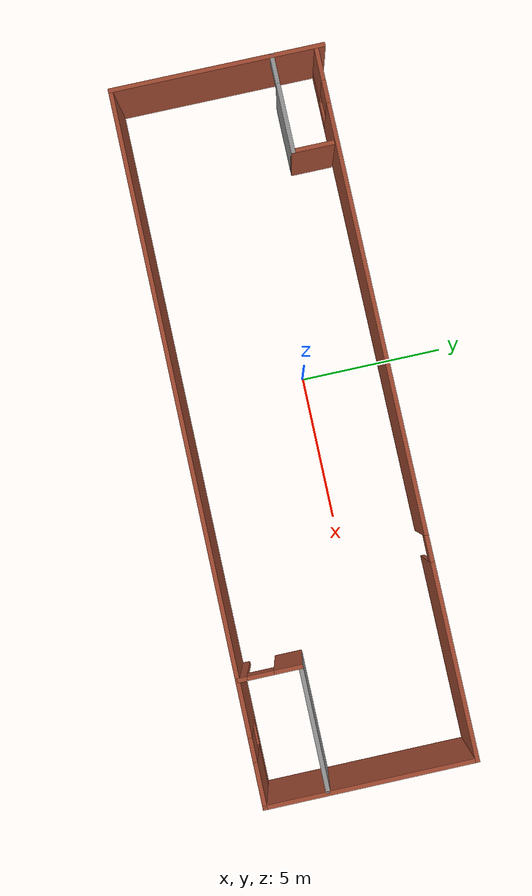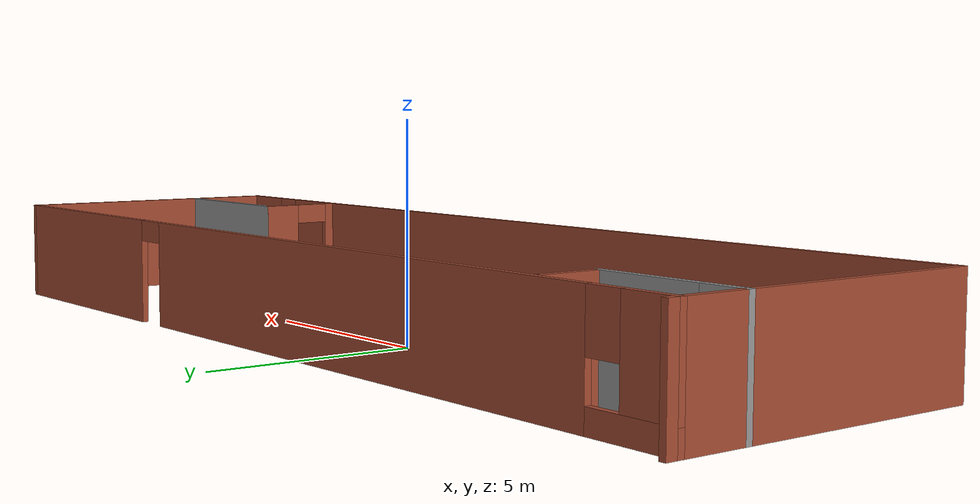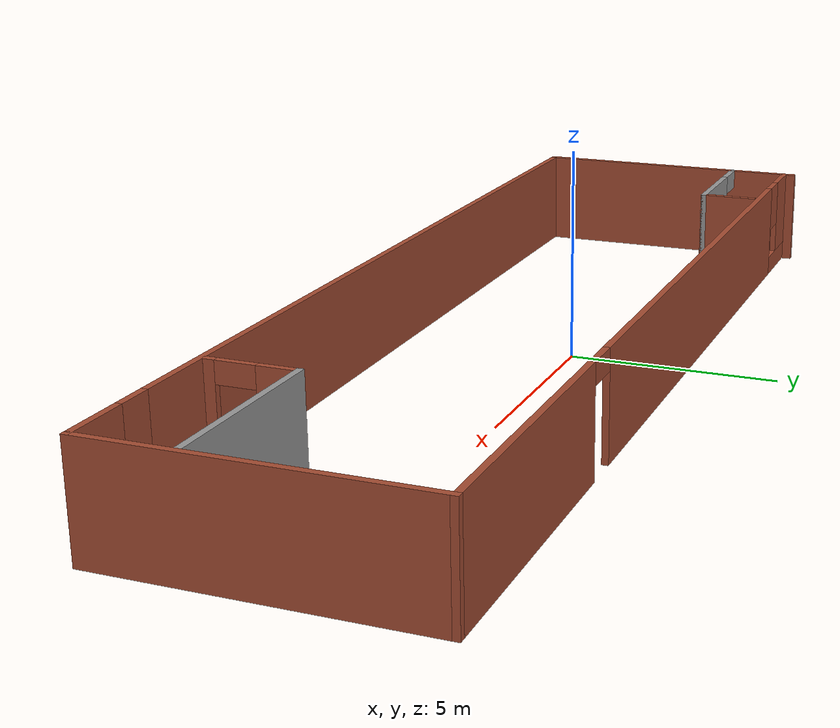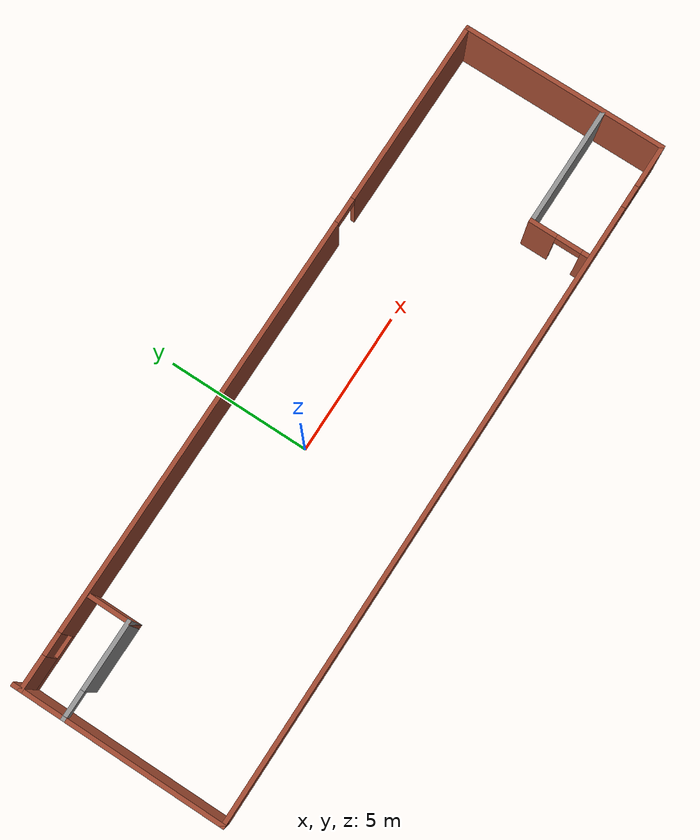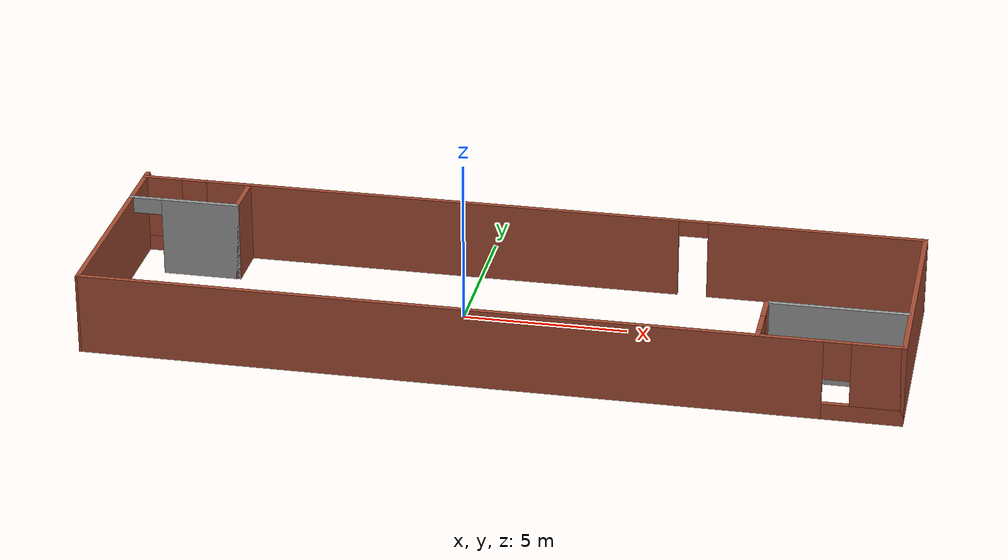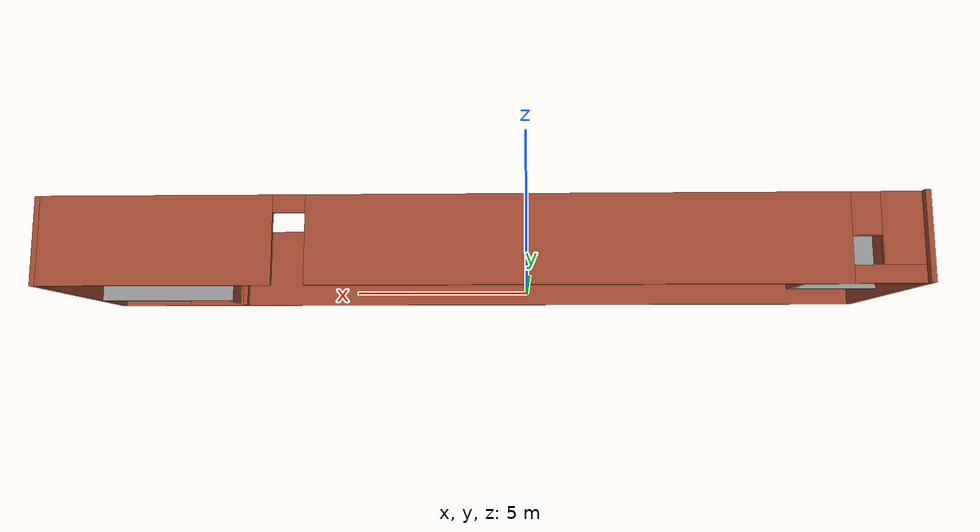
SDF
<?xml version='1.0'?>
<sdf version='1.6'>
  <model name='ground_f'>
    <pose frame=''>1.43506 -0.614344 0 0 -0 0</pose>
    <link name='Wall_0'>
      <collision name='Wall_0_Collision'>
        <geometry>
          <box>
            <size>7.5 0.15 2.5</size>
          </box>
        </geometry>
        <pose frame=''>0 0 1.25 0 -0 0</pose>
      </collision>
      <visual name='Wall_0_Visual'>
        <pose frame=''>0 0 1.25 0 -0 0</pose>
        <geometry>
          <box>
            <size>7.5 0.15 2.5</size>
          </box>
        </geometry>
        <material>
          <script>
            <uri>file://media/materials/scripts/gazebo.material</uri>
            <name>Gazebo/Bricks</name>
          </script>
          <ambient>1 1 1 1</ambient>
        </material>
        <meta>
          <layer>0</layer>
        </meta>
      </visual>
      <pose frame=''>-12.175 0 0 0 0 -1.5708</pose>
    </link>
    <link name='Wall_1'>
      <pose frame=''>0 -3.675 0 0 -0 0</pose>
      <visual name='Wall_1_Visual_0'>
        <pose frame=''>-1.18589 0 1.25 0 -0 0</pose>
        <geometry>
          <box>
            <size>22.1282 0.15 2.5</size>
          </box>
        </geometry>
        <material>
          <script>
            <uri>file://media/materials/scripts/gazebo.material</uri>
            <name>Gazebo/Bricks</name>
          </script>
          <ambient>0.333333 0.333333 1 1</ambient>
        </material>
        <meta>
          <layer>0</layer>
        </meta>
      </visual>
      <collision name='Wall_1_Collision_0'>
        <geometry>
          <box>
            <size>22.1282 0.15 2.5</size>
          </box>
        </geometry>
        <pose frame=''>-1.18589 0 1.25 0 -0 0</pose>
      </collision>
      <visual name='Wall_1_Visual_1'>
        <pose frame=''>11.0641 0 0.25 0 -0 0</pose>
        <geometry>
          <box>
            <size>2.37177 0.15 0.5</size>
          </box>
        </geometry>
        <material>
          <script>
            <uri>file://media/materials/scripts/gazebo.material</uri>
            <name>Gazebo/Bricks</name>
          </script>
          <ambient>0.333333 0.333333 1 1</ambient>
        </material>
        <meta>
          <layer>0</layer>
        </meta>
      </visual>
      <collision name='Wall_1_Collision_1'>
        <geometry>
          <box>
            <size>2.37177 0.15 0.5</size>
          </box>
        </geometry>
        <pose frame=''>11.0641 0 0.25 0 -0 0</pose>
      </collision>
      <visual name='Wall_1_Visual_2'>
        <pose frame=''>11.4641 0 1.5 0 -0 0</pose>
        <geometry>
          <box>
            <size>1.57177 0.15 2</size>
          </box>
        </geometry>
        <material>
          <script>
            <uri>file://media/materials/scripts/gazebo.material</uri>
            <name>Gazebo/Bricks</name>
          </script>
          <ambient>0.333333 0.333333 1 1</ambient>
        </material>
        <meta>
          <layer>0</layer>
        </meta>
      </visual>
      <collision name='Wall_1_Collision_2'>
        <geometry>
          <box>
            <size>1.57177 0.15 2</size>
          </box>
        </geometry>
        <pose frame=''>11.4641 0 1.5 0 -0 0</pose>
      </collision>
      <visual name='Wall_1_Visual_3'>
        <pose frame=''>10.2782 0 1.9 0 -0 0</pose>
        <geometry>
          <box>
            <size>0.8 0.15 1.2</size>
          </box>
        </geometry>
        <material>
          <script>
            <uri>file://media/materials/scripts/gazebo.material</uri>
            <name>Gazebo/Bricks</name>
          </script>
          <ambient>0.333333 0.333333 1 1</ambient>
        </material>
        <meta>
          <layer>0</layer>
        </meta>
      </visual>
      <collision name='Wall_1_Collision_3'>
        <geometry>
          <box>
            <size>0.8 0.15 1.2</size>
          </box>
        </geometry>
        <pose frame=''>10.2782 0 1.9 0 -0 0</pose>
      </collision>
    </link>
    <link name='Wall_2'>
      <collision name='Wall_2_Collision'>
        <geometry>
          <box>
            <size>7.25 0.15 2.5</size>
          </box>
        </geometry>
        <pose frame=''>0 0 1.25 0 -0 0</pose>
      </collision>
      <visual name='Wall_2_Visual'>
        <pose frame=''>0 0 1.25 0 -0 0</pose>
        <geometry>
          <box>
            <size>7.25 0.15 2.5</size>
          </box>
        </geometry>
        <material>
          <script>
            <uri>file://media/materials/scripts/gazebo.material</uri>
            <name>Gazebo/Bricks</name>
          </script>
          <ambient>1 1 1 1</ambient>
        </material>
        <meta>
          <layer>0</layer>
        </meta>
      </visual>
      <pose frame=''>12.175 -0.125 0 0 -0 1.5708</pose>
    </link>
    <link name='Wall_3'>
      <pose frame=''>0 3.425 0 0 -0 3.14159</pose>
      <visual name='Wall_3_Visual_0'>
        <pose frame=''>-8.91953 0 1.25 0 -0 0</pose>
        <geometry>
          <box>
            <size>6.66093 0.15 2.5</size>
          </box>
        </geometry>
        <material>
          <script>
            <uri>file://media/materials/scripts/gazebo.material</uri>
            <name>Gazebo/Bricks</name>
          </script>
          <ambient>0.333333 0.333333 1 1</ambient>
        </material>
        <meta>
          <layer>0</layer>
        </meta>
      </visual>
      <collision name='Wall_3_Collision_0'>
        <geometry>
          <box>
            <size>6.66093 0.15 2.5</size>
          </box>
        </geometry>
        <pose frame=''>-8.91953 0 1.25 0 -0 0</pose>
      </collision>
      <visual name='Wall_3_Visual_1'>
        <pose frame=''>2.74762 0 1.25 0 -0 0</pose>
        <geometry>
          <box>
            <size>14.8734 0.15 2.5</size>
          </box>
        </geometry>
        <material>
          <script>
            <uri>file://media/materials/scripts/gazebo.material</uri>
            <name>Gazebo/Bricks</name>
          </script>
          <ambient>0.333333 0.333333 1 1</ambient>
        </material>
        <meta>
          <layer>0</layer>
        </meta>
      </visual>
      <collision name='Wall_3_Collision_1'>
        <geometry>
          <box>
            <size>14.8734 0.15 2.5</size>
          </box>
        </geometry>
        <pose frame=''>2.74762 0 1.25 0 -0 0</pose>
      </collision>
      <visual name='Wall_3_Visual_2'>
        <pose frame=''>11.2172 0 0.25 0 -0 0</pose>
        <geometry>
          <box>
            <size>2.06569 0.15 0.5</size>
          </box>
        </geometry>
        <material>
          <script>
            <uri>file://media/materials/scripts/gazebo.material</uri>
            <name>Gazebo/Bricks</name>
          </script>
          <ambient>0.333333 0.333333 1 1</ambient>
        </material>
        <meta>
          <layer>0</layer>
        </meta>
      </visual>
      <collision name='Wall_3_Collision_2'>
        <geometry>
          <box>
            <size>2.06569 0.15 0.5</size>
          </box>
        </geometry>
        <pose frame=''>11.2172 0 0.25 0 -0 0</pose>
      </collision>
      <visual name='Wall_3_Visual_3'>
        <pose frame=''>11.6172 0 1.5 0 -0 0</pose>
        <geometry>
          <box>
            <size>1.26569 0.15 2</size>
          </box>
        </geometry>
        <material>
          <script>
            <uri>file://media/materials/scripts/gazebo.material</uri>
            <name>Gazebo/Bricks</name>
          </script>
          <ambient>0.333333 0.333333 1 1</ambient>
        </material>
        <meta>
          <layer>0</layer>
        </meta>
      </visual>
      <collision name='Wall_3_Collision_3'>
        <geometry>
          <box>
            <size>1.26569 0.15 2</size>
          </box>
        </geometry>
        <pose frame=''>11.6172 0 1.5 0 -0 0</pose>
      </collision>
      <visual name='Wall_3_Visual_4'>
        <pose frame=''>10.5843 0 1.9 0 -0 0</pose>
        <geometry>
          <box>
            <size>0.8 0.15 1.2</size>
          </box>
        </geometry>
        <material>
          <script>
            <uri>file://media/materials/scripts/gazebo.material</uri>
            <name>Gazebo/Bricks</name>
          </script>
          <ambient>0.333333 0.333333 1 1</ambient>
        </material>
        <meta>
          <layer>0</layer>
        </meta>
      </visual>
      <collision name='Wall_3_Collision_4'>
        <geometry>
          <box>
            <size>0.8 0.15 1.2</size>
          </box>
        </geometry>
        <pose frame=''>10.5843 0 1.9 0 -0 0</pose>
      </collision>
      <visual name='Wall_3_Visual_5'>
        <pose frame=''>-5.13907 0 2.25 0 -0 0</pose>
        <geometry>
          <box>
            <size>0.9 0.15 0.5</size>
          </box>
        </geometry>
        <material>
          <script>
            <uri>file://media/materials/scripts/gazebo.material</uri>
            <name>Gazebo/Bricks</name>
          </script>
          <ambient>0.333333 0.333333 1 1</ambient>
        </material>
        <meta>
          <layer>0</layer>
        </meta>
      </visual>
      <collision name='Wall_3_Collision_5'>
        <geometry>
          <box>
            <size>0.9 0.15 0.5</size>
          </box>
        </geometry>
        <pose frame=''>-5.13907 0 2.25 0 -0 0</pose>
      </collision>
    </link>
    <link name='Wall_5'>
      <pose frame=''>-10.5 1.90077 0 0 -0 0</pose>
      <visual name='Wall_5_Visual_0'>
        <pose frame=''>-1.67748 0 1.25 0 -0 0</pose>
        <geometry>
          <box>
            <size>0.145034 0.15 2.5</size>
          </box>
        </geometry>
        <material>
          <script>
            <uri>file://media/materials/scripts/gazebo.material</uri>
            <name>Gazebo/Grey</name>
          </script>
          <ambient>1 1 1 1</ambient>
        </material>
        <meta>
          <layer>0</layer>
        </meta>
      </visual>
      <collision name='Wall_5_Collision_0'>
        <geometry>
          <box>
            <size>0.145034 0.15 2.5</size>
          </box>
        </geometry>
        <pose frame=''>-1.67748 0 1.25 0 -0 0</pose>
      </collision>
      <visual name='Wall_5_Visual_1'>
        <pose frame=''>0.522517 0 1.25 0 -0 0</pose>
        <geometry>
          <box>
            <size>2.45497 0.15 2.5</size>
          </box>
        </geometry>
        <material>
          <script>
            <uri>file://media/materials/scripts/gazebo.material</uri>
            <name>Gazebo/Grey</name>
          </script>
          <ambient>1 1 1 1</ambient>
        </material>
        <meta>
          <layer>0</layer>
        </meta>
      </visual>
      <collision name='Wall_5_Collision_1'>
        <geometry>
          <box>
            <size>2.45497 0.15 2.5</size>
          </box>
        </geometry>
        <pose frame=''>0.522517 0 1.25 0 -0 0</pose>
      </collision>
      <visual name='Wall_5_Visual_2'>
        <pose frame=''>-1.15497 0 2.25 0 -0 0</pose>
        <geometry>
          <box>
            <size>0.9 0.15 0.5</size>
          </box>
        </geometry>
        <material>
          <script>
            <uri>file://media/materials/scripts/gazebo.material</uri>
            <name>Gazebo/Grey</name>
          </script>
          <ambient>1 1 1 1</ambient>
        </material>
        <meta>
          <layer>0</layer>
        </meta>
      </visual>
      <collision name='Wall_5_Collision_2'>
        <geometry>
          <box>
            <size>0.9 0.15 0.5</size>
          </box>
        </geometry>
        <pose frame=''>-1.15497 0 2.25 0 -0 0</pose>
      </collision>
    </link>
    <link name='Wall_6'>
      <collision name='Wall_6_Collision'>
        <geometry>
          <box>
            <size>1.5 0.15 2.5</size>
          </box>
        </geometry>
        <pose frame=''>0 0 1.25 0 -0 0</pose>
      </collision>
      <visual name='Wall_6_Visual'>
        <pose frame=''>0 0 1.25 0 -0 0</pose>
        <geometry>
          <box>
            <size>1.5 0.15 2.5</size>
          </box>
        </geometry>
        <material>
          <script>
            <uri>file://media/materials/scripts/gazebo.material</uri>
            <name>Gazebo/Bricks</name>
          </script>
          <ambient>1 1 1 1</ambient>
        </material>
        <meta>
          <layer>0</layer>
        </meta>
      </visual>
      <pose frame=''>-8.825 2.57577 0 0 -0 1.5708</pose>
    </link>
    <link name='Wall_8'>
      <collision name='Wall_8_Collision'>
        <geometry>
          <box>
            <size>4.25 0.15 2.5</size>
          </box>
        </geometry>
        <pose frame=''>0 0 1.25 0 -0 0</pose>
      </collision>
      <visual name='Wall_8_Visual'>
        <pose frame=''>0 0 1.25 0 -0 0</pose>
        <geometry>
          <box>
            <size>4.25 0.15 2.5</size>
          </box>
        </geometry>
        <material>
          <script>
            <uri>file://media/materials/scripts/gazebo.material</uri>
            <name>Gazebo/Grey</name>
          </script>
          <ambient>1 1 1 1</ambient>
        </material>
        <meta>
          <layer>0</layer>
        </meta>
      </visual>
      <pose frame=''>10.0331 -1.55593 0 0 -0 3.14159</pose>
    </link>
    <link name='Wall_9'>
      <pose frame=''>7.98305 -2.60593 0 0 0 -1.5708</pose>
      <visual name='Wall_9_Visual_0'>
        <pose frame=''>-0.639515 0 1.25 0 -0 0</pose>
        <geometry>
          <box>
            <size>0.97097 0.15 2.5</size>
          </box>
        </geometry>
        <material>
          <script>
            <uri>file://media/materials/scripts/gazebo.material</uri>
            <name>Gazebo/Bricks</name>
          </script>
          <ambient>1 1 1 1</ambient>
        </material>
        <meta>
          <layer>0</layer>
        </meta>
      </visual>
      <collision name='Wall_9_Collision_0'>
        <geometry>
          <box>
            <size>0.97097 0.15 2.5</size>
          </box>
        </geometry>
        <pose frame=''>-0.639515 0 1.25 0 -0 0</pose>
      </collision>
      <visual name='Wall_9_Visual_1'>
        <pose frame=''>0.935485 0 1.25 0 -0 0</pose>
        <geometry>
          <box>
            <size>0.37903 0.15 2.5</size>
          </box>
        </geometry>
        <material>
          <script>
            <uri>file://media/materials/scripts/gazebo.material</uri>
            <name>Gazebo/Bricks</name>
          </script>
          <ambient>1 1 1 1</ambient>
        </material>
        <meta>
          <layer>0</layer>
        </meta>
      </visual>
      <collision name='Wall_9_Collision_1'>
        <geometry>
          <box>
            <size>0.37903 0.15 2.5</size>
          </box>
        </geometry>
        <pose frame=''>0.935485 0 1.25 0 -0 0</pose>
      </collision>
      <visual name='Wall_9_Visual_2'>
        <pose frame=''>0.29597 0 2.25 0 -0 0</pose>
        <geometry>
          <box>
            <size>0.9 0.15 0.5</size>
          </box>
        </geometry>
        <material>
          <script>
            <uri>file://media/materials/scripts/gazebo.material</uri>
            <name>Gazebo/Bricks</name>
          </script>
          <ambient>1 1 1 1</ambient>
        </material>
        <meta>
          <layer>0</layer>
        </meta>
      </visual>
      <collision name='Wall_9_Collision_2'>
        <geometry>
          <box>
            <size>0.9 0.15 0.5</size>
          </box>
        </geometry>
        <pose frame=''>0.29597 0 2.25 0 -0 0</pose>
      </collision>
    </link>
    <static>1</static>
  </model>
</sdf>
